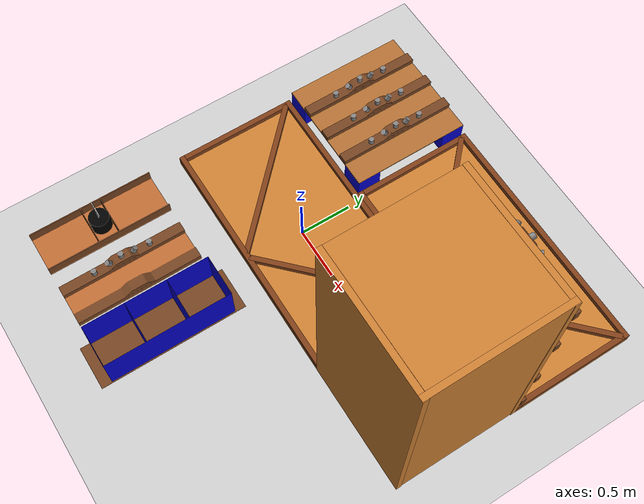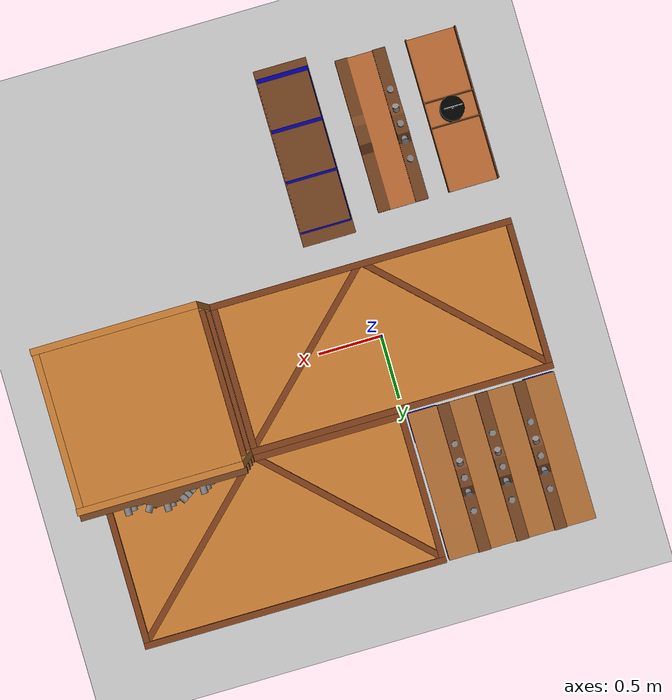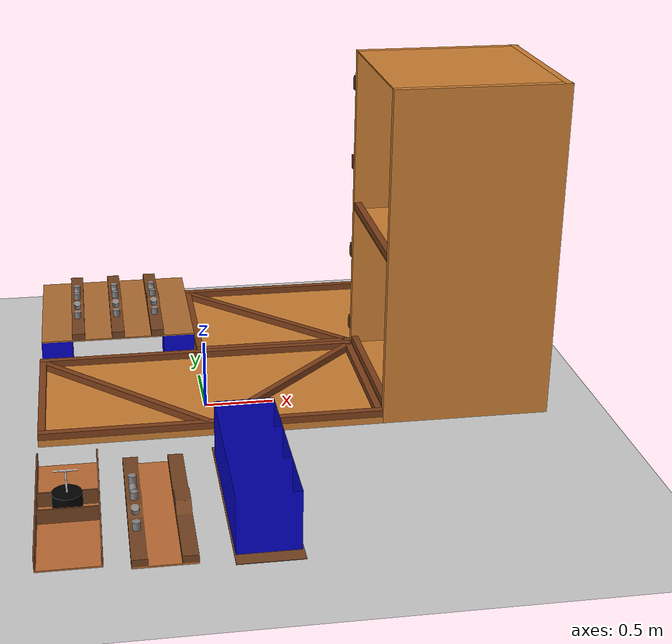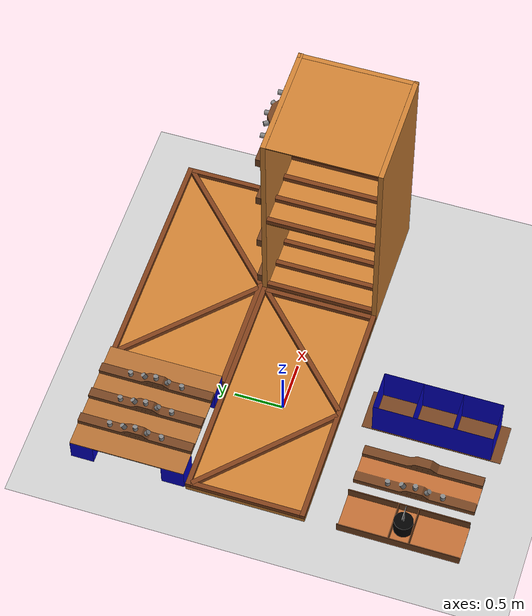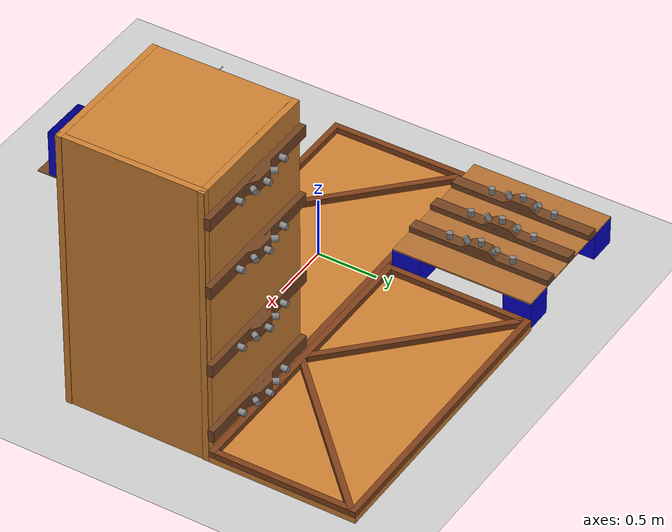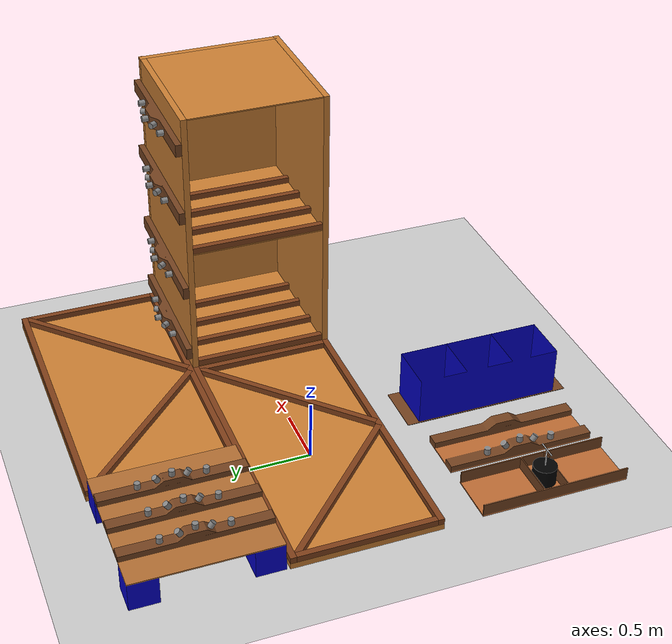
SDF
<?xml version="1.0"?>
<sdf version='1.9'>
  <world name='Dexterity'>
    <physics name='1ms' type='ignored'>
      <max_step_size>0.001</max_step_size>
      <real_time_factor>1</real_time_factor>
      <real_time_update_rate>1000</real_time_update_rate>
    </physics>
    <plugin name='gz::sim::systems::Physics' filename='ignition-gazebo-physics-system' />
    <plugin name='gz::sim::systems::UserCommands' filename='ignition-gazebo-user-commands-system' />
    <plugin name='gz::sim::systems::SceneBroadcaster'
      filename='ignition-gazebo-scene-broadcaster-system' />
    <plugin name='gz::sim::systems::Contact' filename='ignition-gazebo-contact-system' />
    <gravity>0 0 -9.8</gravity>
    <magnetic_field>6e-06 2.3e-05 -4.2e-05</magnetic_field>
    <atmosphere type='adiabatic' />
    <scene>
      <ambient>0.4 0.4 0.4 1</ambient>
      <background>0.7 0.7 0.7 1</background>
      <shadows>false</shadows>
    </scene>

    <model name='ground_plane'>
      <static>true</static>
      <link name='link'>
        <collision name='collision'>
          <geometry>
            <plane>
              <normal>0 0 1</normal>
              <size>100 100</size>
            </plane>
          </geometry>
          <surface>
            <friction>
              <ode />
            </friction>
            <bounce />
            <contact />
          </surface>
        </collision>
        <visual name='visual'>
          <geometry>
            <plane>
              <normal>0 0 1</normal>
              <size>100 100</size>
            </plane>
          </geometry>
          <material>
            <ambient>0.8 0.8 0.8 1</ambient>
            <diffuse>0.8 0.8 0.8 1</diffuse>
            <specular>0.8 0.8 0.8 1</specular>
          </material>
        </visual>
        <pose>0 0 0 0 -0 0</pose>
        <inertial>
          <pose>0 0 0 0 -0 0</pose>
          <mass>1</mass>
          <inertia>
            <ixx>1</ixx>
            <ixy>0</ixy>
            <ixz>0</ixz>
            <iyy>1</iyy>
            <iyz>0</iyz>
            <izz>1</izz>
          </inertia>
        </inertial>
        <enable_wind>false</enable_wind>
      </link>
      <pose>0 0 0 0 -0 0</pose>
      <self_collide>false</self_collide>
    </model>

    <model name='Booth'>
      <pose relative_to='Rails'>2.37 0 1.2744 1.57 0 -1.57</pose>

      <link name='Par1'>
        <inertial>
          <inertia>
            <ixx>0.16666</ixx>
            <ixy>0</ixy>
            <ixz>0</ixz>
            <iyy>0.16666</iyy>
            <iyz>0</iyz>
            <izz>0.16666</izz>
          </inertia>
          <mass>1</mass>
          <pose>0 0 0 0 -0 0</pose>
        </inertial>
        <collision name='Par1_collision'>
          <geometry>
            <box>
              <size>1.2 2.4 0.05</size>
            </box>
          </geometry>
          <surface>
            <friction>
              <ode />
            </friction>
            <bounce />
            <contact />
          </surface>
        </collision>
        <visual name='Par1_visual'>
          <geometry>
            <box>
              <size>1.2 2.4 0.05</size>
            </box>
          </geometry>
          <material>
            <ambient>0.8 0.5 0.2 1</ambient>
            <diffuse>0.8 0.5 0.2 1</diffuse>
            <specular>0.4 0.2 0.1 1</specular>
          </material>
        </visual>
        <pose>0 0 0 0 -0 0</pose>
        <enable_wind>false</enable_wind>
      </link>

      <link name='Par2'>
        <pose relative_to='Par1'>0.575 0 0.57 0 1.57 0</pose>
        <inertial>
          <inertia>
            <ixx>0.16666</ixx>
            <ixy>0</ixy>
            <ixz>0</ixz>
            <iyy>0.16666</iyy>
            <iyz>0</iyz>
            <izz>0.16666</izz>
          </inertia>
          <mass>1</mass>
          <pose>0 0 0 0 -0 0</pose>
        </inertial>
        <collision name='Par2_collision'>
          <geometry>
            <box>
              <size>1.2 2.4 0.05</size>
            </box>
          </geometry>
          <surface>
            <friction>
              <ode />
            </friction>
            <bounce />
            <contact />
          </surface>
        </collision>
        <visual name='Par2_visual'>
          <geometry>
            <box>
              <size>1.2 2.4 0.05</size>
            </box>
          </geometry>
          <material>
            <ambient>0.8 0.5 0.2 1</ambient>
            <diffuse>0.8 0.5 0.2 1</diffuse>
            <specular>0.4 0.2 0.1 1</specular>
          </material>
        </visual>
        <pose>0 0 0 0 -0 0</pose>
        <enable_wind>false</enable_wind>
      </link>

      <link name='Par3'>
        <pose relative_to="Par1">-0.575 0 0.57 0 1.57 0</pose>
        <inertial>
          <inertia>
            <ixx>0.16666</ixx>
            <ixy>0</ixy>
            <ixz>0</ixz>
            <iyy>0.16666</iyy>
            <iyz>0</iyz>
            <izz>0.16666</izz>
          </inertia>
          <mass>1</mass>
          <pose>0 0 0 0 -0 0</pose>
        </inertial>
        <collision name='Par3_collision'>
          <geometry>
            <box>
              <size>1.2 2.4 0.05</size>
            </box>
          </geometry>
          <surface>
            <friction>
              <ode />
            </friction>
            <bounce />
            <contact />
          </surface>
        </collision>
        <visual name='Par3_visual'>
          <geometry>
            <box>
              <size>1.2 2.4 0.05</size>
            </box>
          </geometry>
          <material>
            <ambient>0.8 0.5 0.2 1</ambient>
            <diffuse>0.8 0.5 0.2 1</diffuse>
            <specular>0.4 0.2 0.1 1</specular>
          </material>
        </visual>
        <pose>0 0 0 0 -0 0</pose>
        <enable_wind>false</enable_wind>
      </link>

      <link name='Blo1'>
        <pose relative_to='Par1'>0 1.195 0.595 0 0 0</pose>
        <inertial>
          <inertia>
            <ixx>0.16666</ixx>
            <ixy>0</ixy>
            <ixz>0</ixz>
            <iyy>0.16666</iyy>
            <iyz>0</iyz>
            <izz>0.16666</izz>
          </inertia>
          <mass>1</mass>
          <pose>0 0 0 0 -0 0</pose>
        </inertial>
        <collision name='Blo1_collision'>
          <geometry>
            <box>
              <size>1.1 0.01 1.13</size>
            </box>
          </geometry>
          <surface>
            <friction>
              <ode />
            </friction>
            <bounce />
            <contact />
          </surface>
        </collision>
        <visual name='Blo1_visual'>
          <geometry>
            <box>
              <size>1.1 0.01 1.145</size>
            </box>
          </geometry>
          <material>
            <ambient>0.8 0.5 0.2 1</ambient>
            <diffuse>0.8 0.5 0.2 1</diffuse>
            <specular>0.4 0.2 0.1 1</specular>
          </material>
        </visual>
        <pose>0 0 0 0 -0 0</pose>
        <enable_wind>false</enable_wind>
      </link>

      <link name='Blo2'>
        <pose relative_to='Par1'>0 0 0.595 0 0 0</pose>
        <inertial>
          <inertia>
            <ixx>0.16666</ixx>
            <ixy>0</ixy>
            <ixz>0</ixz>
            <iyy>0.16666</iyy>
            <iyz>0</iyz>
            <izz>0.16666</izz>
          </inertia>
          <mass>1</mass>
          <pose>0 0 0 0 -0 0</pose>
        </inertial>
        <collision name='Blo2_collision'>
          <geometry>
            <box>
              <size>1.1 0.01 1.145</size>
            </box>
          </geometry>
          <surface>
            <friction>
              <ode />
            </friction>
            <bounce />
            <contact />
          </surface>
        </collision>
        <visual name='Blo2_visual'>
          <geometry>
            <box>
              <size>1.1 0.01 1.145</size>
            </box>
          </geometry>
          <material>
            <ambient>0.8 0.5 0.2 1</ambient>
            <diffuse>0.8 0.5 0.2 1</diffuse>
            <specular>0.4 0.2 0.1 1</specular>
          </material>
        </visual>
        <pose>0 0 0 0 -0 0</pose>
        <enable_wind>false</enable_wind>
      </link>

      <link name='Blo3'>
        <pose relative_to='Par1'>0 -1.1 0.595 0 0 0</pose>
        <inertial>
          <inertia>
            <ixx>0.16666</ixx>
            <ixy>0</ixy>
            <ixz>0</ixz>
            <iyy>0.16666</iyy>
            <iyz>0</iyz>
            <izz>0.16666</izz>
          </inertia>
          <mass>1</mass>
          <pose>0 0 0 0 -0 0</pose>
        </inertial>
        <collision name='Blo3_collision'>
          <geometry>
            <box>
              <size>1.1 0.01 1.145</size>
            </box>
          </geometry>
          <surface>
            <friction>
              <ode />
            </friction>
            <bounce />
            <contact />
          </surface>
        </collision>
        <visual name='Blo3_visual'>
          <geometry>
            <box>
              <size>1.1 0.01 1.145</size>
            </box>
          </geometry>
          <material>
            <ambient>0.8 0.5 0.2 1</ambient>
            <diffuse>0.8 0.5 0.2 1</diffuse>
            <specular>0.4 0.2 0.1 1</specular>
          </material>
        </visual>
        <enable_wind>false</enable_wind>
      </link>

      <!-- Bloco 1 -->
      <link name='Fei1'>
        <inertial>
          <inertia>
            <ixx>0.16666</ixx>
            <ixy>0</ixy>
            <ixz>0</ixz>
            <iyy>0.16666</iyy>
            <iyz>0</iyz>
            <izz>0.16666</izz>
          </inertia>
          <mass>1</mass>
          <pose>0 0 0 0 -0 0</pose>
        </inertial>
        <collision name='Fei1_collision'>
          <geometry>
            <box>
              <size>1.1 0.05 0.05</size>
            </box>
          </geometry>
          <surface>
            <friction>
              <ode />
            </friction>
            <bounce />
            <contact />
          </surface>
        </collision>
        <visual name='Fei1_visual'>
          <geometry>
            <box>
              <size>1.1 0.05 0.05</size>
            </box>
          </geometry>
          <material>
            <ambient>0.5 0.25 0.1 1</ambient>
            <diffuse>0.5 0.25 0.1 1</diffuse>
            <specular>0.3 0.15 0.05 1</specular>
          </material>
        </visual>
        <pose relative_to='Blo2'>0 0.03 0.547 0 0 0</pose>
        <enable_wind>false</enable_wind>
      </link>

      <link name='Fei2'>
        <inertial>
          <inertia>
            <ixx>0.16666</ixx>
            <ixy>0</ixy>
            <ixz>0</ixz>
            <iyy>0.16666</iyy>
            <iyz>0</iyz>
            <izz>0.16666</izz>
          </inertia>
          <mass>1</mass>
          <pose>0 0 0 0 -0 0</pose>
        </inertial>
        <collision name='Fei2_collision'>
          <geometry>
            <box>
              <size>1.1 0.05 0.05</size>
            </box>
          </geometry>
          <surface>
            <friction>
              <ode />
            </friction>
            <bounce />
            <contact />
          </surface>
        </collision>
        <visual name='Fei2_visual'>
          <geometry>
            <box>
              <size>1.1 0.05 0.05</size>
            </box>
          </geometry>
          <material>
            <ambient>0.5 0.25 0.1 1</ambient>
            <diffuse>0.5 0.25 0.1 1</diffuse>
            <specular>0.3 0.15 0.05 1</specular>
          </material>
        </visual>
        <pose relative_to='Blo2'>0 0.03 0.272 0 0 0</pose>
        <enable_wind>false</enable_wind>
      </link>

      <link name='Fei3'>
        <inertial>
          <inertia>
            <ixx>0.16666</ixx>
            <ixy>0</ixy>
            <ixz>0</ixz>
            <iyy>0.16666</iyy>
            <iyz>0</iyz>
            <izz>0.16666</izz>
          </inertia>
          <mass>1</mass>
          <pose>0 0 0 0 -0 0</pose>
        </inertial>
        <collision name='Fei3_collision'>
          <geometry>
            <box>
              <size>1.1 0.05 0.05</size>
            </box>
          </geometry>
          <surface>
            <friction>
              <ode />
            </friction>
            <bounce />
            <contact />
          </surface>
        </collision>
        <visual name='Fei3_visual'>
          <geometry>
            <box>
              <size>1.1 0.05 0.05</size>
            </box>
          </geometry>
          <material>
            <ambient>0.5 0.25 0.1 1</ambient>
            <diffuse>0.5 0.25 0.1 1</diffuse>
            <specular>0.3 0.15 0.05 1</specular>
          </material>
        </visual>
        <pose relative_to='Blo2'>0 0.03 -0.272 0 0 0</pose>
        <enable_wind>false</enable_wind>
      </link>

      <link name='Fei4'>
        <inertial>
          <inertia>
            <ixx>0.16666</ixx>
            <ixy>0</ixy>
            <ixz>0</ixz>
            <iyy>0.16666</iyy>
            <iyz>0</iyz>
            <izz>0.16666</izz>
          </inertia>
          <mass>1</mass>
          <pose>0 0 0 0 -0 0</pose>
        </inertial>
        <collision name='Fei4_collision'>
          <geometry>
            <box>
              <size>1.1 0.05 0.05</size>
            </box>
          </geometry>
          <surface>
            <friction>
              <ode />
            </friction>
            <bounce />
            <contact />
          </surface>
        </collision>
        <visual name='Fei4_visual'>
          <geometry>
            <box>
              <size>1.1 0.05 0.05</size>
            </box>
          </geometry>
          <material>
            <ambient>0.5 0.25 0.1 1</ambient>
            <diffuse>0.5 0.25 0.1 1</diffuse>
            <specular>0.3 0.15 0.05 1</specular>
          </material>
        </visual>
        <pose relative_to='Blo2'>0 0.03 0 0 0 0</pose>
        <enable_wind>false</enable_wind>
      </link>

      <!-- Bloco 2-->
      <link name='Fei5'>
        <inertial>
          <inertia>
            <ixx>0.16666</ixx>
            <ixy>0</ixy>
            <ixz>0</ixz>
            <iyy>0.16666</iyy>
            <iyz>0</iyz>
            <izz>0.16666</izz>
          </inertia>
          <mass>1</mass>
          <pose>0 0 0 0 -0 0</pose>
        </inertial>
        <collision name='Fei5_collision'>
          <geometry>
            <box>
              <size>1.1 0.05 0.05</size>
            </box>
          </geometry>
          <surface>
            <friction>
              <ode />
            </friction>
            <bounce />
            <contact />
          </surface>
        </collision>
        <visual name='Fei5_visual'>
          <geometry>
            <box>
              <size>1.1 0.05 0.05</size>
            </box>
          </geometry>
          <material>
            <ambient>0.5 0.25 0.1 1</ambient>
            <diffuse>0.5 0.25 0.1 1</diffuse>
            <specular>0.3 0.15 0.05 1</specular>
          </material>
        </visual>
        <pose relative_to='Blo3'>0 0.03 0.547 0 0 0</pose>
        <enable_wind>false</enable_wind>
      </link>

      <link name='Fei6'>
        <inertial>
          <inertia>
            <ixx>0.16666</ixx>
            <ixy>0</ixy>
            <ixz>0</ixz>
            <iyy>0.16666</iyy>
            <iyz>0</iyz>
            <izz>0.16666</izz>
          </inertia>
          <mass>1</mass>
          <pose>0 0 0 0 -0 0</pose>
        </inertial>
        <collision name='Fei6_collision'>
          <geometry>
            <box>
              <size>1.1 0.05 0.05</size>
            </box>
          </geometry>
          <surface>
            <friction>
              <ode />
            </friction>
            <bounce />
            <contact />
          </surface>
        </collision>
        <visual name='Fei6_visual'>
          <geometry>
            <box>
              <size>1.1 0.05 0.05</size>
            </box>
          </geometry>
          <material>
            <ambient>0.5 0.25 0.1 1</ambient>
            <diffuse>0.5 0.25 0.1 1</diffuse>
            <specular>0.3 0.15 0.05 1</specular>
          </material>
        </visual>
        <pose relative_to='Blo3'>0 0.03 0.272 0 0 0</pose>
        <enable_wind>false</enable_wind>
      </link>

      <link name='Fei7'>
        <inertial>
          <inertia>
            <ixx>0.16666</ixx>
            <ixy>0</ixy>
            <ixz>0</ixz>
            <iyy>0.16666</iyy>
            <iyz>0</iyz>
            <izz>0.16666</izz>
          </inertia>
          <mass>1</mass>
          <pose>0 0 0 0 -0 0</pose>
        </inertial>
        <collision name='Fei7_collision'>
          <geometry>
            <box>
              <size>1.1 0.05 0.05</size>
            </box>
          </geometry>
          <surface>
            <friction>
              <ode />
            </friction>
            <bounce />
            <contact />
          </surface>
        </collision>
        <visual name='Fei7_visual'>
          <geometry>
            <box>
              <size>1.1 0.05 0.05</size>
            </box>
          </geometry>
          <material>
            <ambient>0.5 0.25 0.1 1</ambient>
            <diffuse>0.5 0.25 0.1 1</diffuse>
            <specular>0.3 0.15 0.05 1</specular>
          </material>
        </visual>
        <pose relative_to='Blo3'>0 0.03 -0.272 0 0 0</pose>
        <enable_wind>false</enable_wind>
      </link>

      <link name='Fei8'>
        <inertial>
          <inertia>
            <ixx>0.16666</ixx>
            <ixy>0</ixy>
            <ixz>0</ixz>
            <iyy>0.16666</iyy>
            <iyz>0</iyz>
            <izz>0.16666</izz>
          </inertia>
          <mass>1</mass>
          <pose>0 0 0 0 -0 0</pose>
        </inertial>
        <collision name='Fei8_collision'>
          <geometry>
            <box>
              <size>1.1 0.05 0.05</size>
            </box>
          </geometry>
          <surface>
            <friction>
              <ode />
            </friction>
            <bounce />
            <contact />
          </surface>
        </collision>
        <visual name='Fei8_visual'>
          <geometry>
            <box>
              <size>1.1 0.05 0.05</size>
            </box>
          </geometry>
          <material>
            <ambient>0.5 0.25 0.1 1</ambient>
            <diffuse>0.5 0.25 0.1 1</diffuse>
            <specular>0.3 0.15 0.05 1</specular>
          </material>
        </visual>
        <pose relative_to='Blo3'>0 0.03 0 0 0 0</pose>
        <enable_wind>false</enable_wind>
      </link>

      <!-- Rails -->

      <link name='Rails1'>
        <collision name='Rails1_collision'>
          <geometry>
            <mesh>
              <uri>model://Rails.dae</uri>
              <scale>0.5 0.5 0.5</scale>
            </mesh>
          </geometry>
        </collision>

        <visual name='Rails1_visual'>
          <geometry>
            <mesh>
              <uri>model://Rails.dae</uri>
              <scale>0.5 0.5 0.5</scale>
            </mesh>
          </geometry>
        </visual>
        <pose relative_to='Par3'>0 0.95 -0.05 0 3.14 1.57</pose>
      </link>

      <link name='Rails2'>
        <collision name='Rails2_collision'>
          <geometry>
            <mesh>
              <uri>model://Rails.dae</uri>
              <scale>0.5 0.5 0.5</scale>
            </mesh>
          </geometry>
        </collision>

        <visual name='Rails2_visual'>
          <geometry>
            <mesh>
              <uri>model://Rails.dae</uri>
              <scale>0.5 0.5 0.5</scale>
            </mesh>
          </geometry>
        </visual>
        <pose relative_to='Par3'>0 0.35 -0.05 0 3.14 1.57</pose>
      </link>

      <link name='Rails3'>
        <collision name='Rails3_collision'>
          <geometry>
            <mesh>
              <uri>model://Rails.dae</uri>
              <scale>0.5 0.5 0.5</scale>
            </mesh>
          </geometry>
        </collision>

        <visual name='Rails3_visual'>
          <geometry>
            <mesh>
              <uri>model://Rails.dae</uri>
              <scale>0.5 0.5 0.5</scale>
            </mesh>
          </geometry>
        </visual>
        <pose relative_to='Par3'>0 -0.35 -0.05 0 3.14 1.57</pose>
      </link>

      <link name='Rails4'>
        <collision name='Rails4_collision'>
          <geometry>
            <mesh>
              <uri>model://Rails.dae</uri>
              <scale>0.5 0.5 0.5</scale>
            </mesh>
          </geometry>
        </collision>

        <visual name='Rails4_visual'>
          <geometry>
            <mesh>
              <uri>model://Rails.dae</uri>
              <scale>0.5 0.5 0.5</scale>
            </mesh>
          </geometry>
        </visual>
        <pose relative_to='Par3'>0 -0.95 -0.05 0 3.14 1.57</pose>
      </link>

      <static>true</static>
    </model>

    <model name='Rails'>
      <pose>0 0 0 0 0 0</pose>
      <link name='Bas1'>
        <inertial>
          <inertia>
            <ixx>0.16666</ixx>
            <ixy>0</ixy>
            <ixz>0</ixz>
            <iyy>0.16666</iyy>
            <iyz>0</iyz>
            <izz>0.16666</izz>
          </inertia>
          <mass>1</mass>
          <pose>0 0 0 0 -0 0</pose>
        </inertial>
        <collision name='Bas1_collision'>
          <geometry>
            <box>
              <size>2.4 1.2 0.05</size>
            </box>
          </geometry>
          <surface>
            <friction>
              <ode />
            </friction>
            <bounce />
            <contact />
          </surface>
        </collision>
        <visual name='Bas1_visual'>
          <geometry>
            <box>
              <size>2.4 1.2 0.05</size>
            </box>
          </geometry>
          <material>
            <ambient>0.8 0.5 0.2 1</ambient>
            <diffuse>0.8 0.5 0.2 1</diffuse>
            <specular>0.4 0.2 0.1 1</specular>
          </material>
        </visual>
        <pose>0 0 0.1 0 -0 0</pose>
        <enable_wind>false</enable_wind>
      </link>
      <link name='Bas2'>
        <inertial>
          <inertia>
            <ixx>0.16666</ixx>
            <ixy>0</ixy>
            <ixz>0</ixz>
            <iyy>0.16666</iyy>
            <iyz>0</iyz>
            <izz>0.16666</izz>
          </inertia>
          <mass>1</mass>
          <pose>0 0 0 0 -0 0</pose>
        </inertial>
        <collision name='Bas2_collision'>
          <geometry>
            <box>
              <size>2.4 1.2 0.05</size>
            </box>
          </geometry>
          <surface>
            <friction>
              <ode />
            </friction>
            <bounce />
            <contact />
          </surface>
        </collision>
        <visual name='Bas2_visual'>
          <geometry>
            <box>
              <size>2.4 1.2 0.05</size>
            </box>
          </geometry>
          <material>
            <ambient>0.8 0.5 0.2 1</ambient>
            <diffuse>0.8 0.5 0.2 1</diffuse>
            <specular>0.4 0.2 0.1 1</specular>
          </material>
        </visual>
        <pose relative_to='Bas1'>1.2 1.2 0 0 0 0</pose>
        <enable_wind>false</enable_wind>
      </link>

      <!-- Base 2 -->

      <link name='BarA1'>
        <inertial>
          <inertia>
            <ixx>0.16666</ixx>
            <ixy>0</ixy>
            <ixz>0</ixz>
            <iyy>0.16666</iyy>
            <iyz>0</iyz>
            <izz>0.16666</izz>
          </inertia>
          <mass>1</mass>
          <pose>0 0 0 0 -0 0</pose>
        </inertial>
        <collision name='BarA1_collision'>
          <geometry>
            <box>
              <size>2.4 0.05 0.05</size>
            </box>
          </geometry>
          <surface>
            <friction>
              <ode />
            </friction>
            <bounce />
            <contact />
          </surface>
        </collision>
        <visual name='BarA1_visual'>
          <geometry>
            <box>
              <size>2.4 0.05 0.05</size>
            </box>
          </geometry>
          <material>
            <ambient>0.5 0.25 0.1 1</ambient>
            <diffuse>0.5 0.25 0.1 1</diffuse>
            <specular>0.3 0.15 0.05 1</specular>
          </material>
        </visual>
        <pose relative_to='Bas1'>0 -0.575 0.05 0 0 0</pose>
        <enable_wind>false</enable_wind>
      </link>
      <link name='BarA2'>
        <inertial>
          <inertia>
            <ixx>0.16666</ixx>
            <ixy>0</ixy>
            <ixz>0</ixz>
            <iyy>0.16666</iyy>
            <iyz>0</iyz>
            <izz>0.16666</izz>
          </inertia>
          <mass>1</mass>
          <pose>0 0 0 0 -0 0</pose>
        </inertial>
        <collision name='BarA2_collision'>
          <geometry>
            <box>
              <size>2.4 0.05 0.05</size>
            </box>
          </geometry>
          <surface>
            <friction>
              <ode />
            </friction>
            <bounce />
            <contact />
          </surface>
        </collision>
        <visual name='BarA2_visual'>
          <geometry>
            <box>
              <size>2.4 0.05 0.05</size>
            </box>
          </geometry>
          <material>
            <ambient>0.5 0.25 0.1 1</ambient>
            <diffuse>0.5 0.25 0.1 1</diffuse>
            <specular>0.3 0.15 0.05 1</specular>
          </material>
        </visual>
        <pose relative_to='Bas1'>0 0.575 0.05 0 -0 0</pose>
        <enable_wind>false</enable_wind>
      </link>
      <link name='BarA3'>
        <inertial>
          <inertia>
            <ixx>0.16666</ixx>
            <ixy>0</ixy>
            <ixz>0</ixz>
            <iyy>0.16666</iyy>
            <iyz>0</iyz>
            <izz>0.16666</izz>
          </inertia>
          <mass>1</mass>
          <pose>0 0 0 0 -0 0</pose>
        </inertial>
        <collision name='BarA3_collision'>
          <geometry>
            <box>
              <size>0.05 1.1 0.05</size>
            </box>
          </geometry>
          <surface>
            <friction>
              <ode />
            </friction>
            <bounce />
            <contact />
          </surface>
        </collision>
        <visual name='BarA3_visual'>
          <geometry>
            <box>
              <size>0.05 1.1 0.05</size>
            </box>
          </geometry>
          <material>
            <ambient>0.5 0.25 0.1 1</ambient>
            <diffuse>0.5 0.25 0.1 1</diffuse>
            <specular>0.3 0.15 0.05 1</specular>
          </material>
        </visual>
        <pose relative_to='Bas1'>-1.175 0 0.05 0 -0 0</pose>
        <enable_wind>false</enable_wind>
      </link>
      <link name='BarA4'>
        <inertial>
          <inertia>
            <ixx>0.16666</ixx>
            <ixy>0</ixy>
            <ixz>0</ixz>
            <iyy>0.16666</iyy>
            <iyz>0</iyz>
            <izz>0.16666</izz>
          </inertia>
          <mass>1</mass>
          <pose>0 0 0 0 -0 0</pose>
        </inertial>
        <collision name='BarA4_collision'>
          <geometry>
            <box>
              <size>0.05 1.1 0.05</size>
            </box>
          </geometry>
          <surface>
            <friction>
              <ode />
            </friction>
            <bounce />
            <contact />
          </surface>
        </collision>
        <visual name='BarA4_visual'>
          <geometry>
            <box>
              <size>0.05 1.1 0.05</size>
            </box>
          </geometry>
          <material>
            <ambient>0.5 0.25 0.1 1</ambient>
            <diffuse>0.5 0.25 0.1 1</diffuse>
            <specular>0.3 0.15 0.05 1</specular>
          </material>
        </visual>
        <pose relative_to='Bas1'>1.175 0 0.05 0 -0 0</pose>
        <enable_wind>false</enable_wind>
      </link>
      <link name='BarA5'>
        <inertial>
          <inertia>
            <ixx>0.16666</ixx>
            <ixy>0</ixy>
            <ixz>0</ixz>
            <iyy>0.16666</iyy>
            <iyz>0</iyz>
            <izz>0.16666</izz>
          </inertia>
          <mass>1</mass>
          <pose>0 0 0 0 -0 0</pose>
        </inertial>
        <collision name='BarA5_collision'>
          <geometry>
            <box>
              <size>0.05 1.6 0.05</size>
            </box>
          </geometry>
          <surface>
            <friction>
              <ode />
            </friction>
            <bounce />
            <contact />
          </surface>
        </collision>
        <visual name='BarA5_visual'>
          <geometry>
            <box>
              <size>0.05 1.6 0.05</size>
            </box>
          </geometry>
          <material>
            <ambient>0.5 0.25 0.1 1</ambient>
            <diffuse>0.5 0.25 0.1 1</diffuse>
            <specular>0.3 0.15 0.05 1</specular>
          </material>
        </visual>
        <pose relative_to='Bas1'>-0.6 -0.01 0.05 0 -0 0.8</pose>
        <enable_wind>false</enable_wind>
      </link>
      <link name='BarA6'>
        <inertial>
          <inertia>
            <ixx>0.16666</ixx>
            <ixy>0</ixy>
            <ixz>0</ixz>
            <iyy>0.16666</iyy>
            <iyz>0</iyz>
            <izz>0.16666</izz>
          </inertia>
          <mass>1</mass>
          <pose>0 0 0 0 -0 0</pose>
        </inertial>
        <collision name='BarA6_collision'>
          <geometry>
            <box>
              <size>0.05 1.6 0.05</size>
            </box>
          </geometry>
          <surface>
            <friction>
              <ode />
            </friction>
            <bounce />
            <contact />
          </surface>
        </collision>
        <visual name='BarA6_visual'>
          <geometry>
            <box>
              <size>0.05 1.6 0.05</size>
            </box>
          </geometry>
          <material>
            <ambient>0.5 0.25 0.1 1</ambient>
            <diffuse>0.5 0.25 0.1 1</diffuse>
            <specular>0.3 0.15 0.05 1</specular>
          </material>
        </visual>
        <pose relative_to='Bas1'>0.6 -0.01 0.05 0 0 -0.8</pose>
        <enable_wind>false</enable_wind>
      </link>

      <!-- Base 2 -->

      <link name='BarA7'>
        <inertial>
          <inertia>
            <ixx>0.16666</ixx>
            <ixy>0</ixy>
            <ixz>0</ixz>
            <iyy>0.16666</iyy>
            <iyz>0</iyz>
            <izz>0.16666</izz>
          </inertia>
          <mass>1</mass>
          <pose>0 0 0 0 -0 0</pose>
        </inertial>
        <collision name='BarA7_collision'>
          <geometry>
            <box>
              <size>2.4 0.05 0.05</size>
            </box>
          </geometry>
          <surface>
            <friction>
              <ode />
            </friction>
            <bounce />
            <contact />
          </surface>
        </collision>
        <visual name='BarA7_visual'>
          <geometry>
            <box>
              <size>2.4 0.05 0.05</size>
            </box>
          </geometry>
          <material>
            <ambient>0.5 0.25 0.1 1</ambient>
            <diffuse>0.5 0.25 0.1 1</diffuse>
            <specular>0.3 0.15 0.05 1</specular>
          </material>
        </visual>
        <pose relative_to='Bas2'>0 -0.575 0.05 0 0 0</pose>
        <enable_wind>false</enable_wind>
      </link>
      <link name='BarA8'>
        <inertial>
          <inertia>
            <ixx>0.16666</ixx>
            <ixy>0</ixy>
            <ixz>0</ixz>
            <iyy>0.16666</iyy>
            <iyz>0</iyz>
            <izz>0.16666</izz>
          </inertia>
          <mass>1</mass>
          <pose>0 0 0 0 -0 0</pose>
        </inertial>
        <collision name='BarA8_collision'>
          <geometry>
            <box>
              <size>2.4 0.05 0.05</size>
            </box>
          </geometry>
          <surface>
            <friction>
              <ode />
            </friction>
            <bounce />
            <contact />
          </surface>
        </collision>
        <visual name='BarA8_visual'>
          <geometry>
            <box>
              <size>2.4 0.05 0.05</size>
            </box>
          </geometry>
          <material>
            <ambient>0.5 0.25 0.1 1</ambient>
            <diffuse>0.5 0.25 0.1 1</diffuse>
            <specular>0.3 0.15 0.05 1</specular>
          </material>
        </visual>
        <pose relative_to='Bas2'>0 0.575 0.05 0 0 0</pose>
        <enable_wind>false</enable_wind>
      </link>
      <link name='BarA9'>
        <inertial>
          <inertia>
            <ixx>0.16666</ixx>
            <ixy>0</ixy>
            <ixz>0</ixz>
            <iyy>0.16666</iyy>
            <iyz>0</iyz>
            <izz>0.16666</izz>
          </inertia>
          <mass>1</mass>
          <pose>0 0 0 0 -0 0</pose>
        </inertial>
        <collision name='BarA9_collision'>
          <geometry>
            <box>
              <size>0.05 1.1 0.05</size>
            </box>
          </geometry>
          <surface>
            <friction>
              <ode />
            </friction>
            <bounce />
            <contact />
          </surface>
        </collision>
        <visual name='BarA9_visual'>
          <geometry>
            <box>
              <size>0.05 1.1 0.05</size>
            </box>
          </geometry>
          <material>
            <ambient>0.5 0.25 0.1 1</ambient>
            <diffuse>0.5 0.25 0.1 1</diffuse>
            <specular>0.3 0.15 0.05 1</specular>
          </material>
        </visual>
        <pose relative_to='Bas2'>1.175 0 0.05 0 0 0</pose>
        <enable_wind>false</enable_wind>
      </link>
      <link name='BarA10'>
        <inertial>
          <inertia>
            <ixx>0.16666</ixx>
            <ixy>0</ixy>
            <ixz>0</ixz>
            <iyy>0.16666</iyy>
            <iyz>0</iyz>
            <izz>0.16666</izz>
          </inertia>
          <mass>1</mass>
          <pose>0 0 0 0 -0 0</pose>
        </inertial>
        <collision name='BarA10_collision'>
          <geometry>
            <box>
              <size>0.05 1.1 0.05</size>
            </box>
          </geometry>
          <surface>
            <friction>
              <ode />
            </friction>
            <bounce />
            <contact />
          </surface>
        </collision>
        <visual name='BarA10_visual'>
          <geometry>
            <box>
              <size>0.05 1.1 0.05</size>
            </box>
          </geometry>
          <material>
            <ambient>0.5 0.25 0.1 1</ambient>
            <diffuse>0.5 0.25 0.1 1</diffuse>
            <specular>0.3 0.15 0.05 1</specular>
          </material>
        </visual>
        <pose relative_to='Bas2'>-1.175 0 0.05 0 -0 0</pose>
        <enable_wind>false</enable_wind>
      </link>
      <link name='BarA11'>
        <inertial>
          <inertia>
            <ixx>0.16666</ixx>
            <ixy>0</ixy>
            <ixz>0</ixz>
            <iyy>0.16666</iyy>
            <iyz>0</iyz>
            <izz>0.16666</izz>
          </inertia>
          <mass>1</mass>
          <pose>0 0 0 0 -0 0</pose>
        </inertial>
        <collision name='BarA11_collision'>
          <geometry>
            <box>
              <size>0.05 1.6 0.05</size>
            </box>
          </geometry>
          <surface>
            <friction>
              <ode />
            </friction>
            <bounce />
            <contact />
          </surface>
        </collision>
        <visual name='BarA11_visual'>
          <geometry>
            <box>
              <size>0.05 1.6 0.05</size>
            </box>
          </geometry>
          <material>
            <ambient>0.5 0.25 0.1 1</ambient>
            <diffuse>0.5 0.25 0.1 1</diffuse>
            <specular>0.3 0.15 0.05 1</specular>
          </material>
        </visual>
        <pose relative_to='Bas2'>-0.6 -0.01 0.05 0 -0 0.8</pose>
        <enable_wind>false</enable_wind>
      </link>
      <link name='BarA12'>
        <inertial>
          <inertia>
            <ixx>0.16666</ixx>
            <ixy>0</ixy>
            <ixz>0</ixz>
            <iyy>0.16666</iyy>
            <iyz>0</iyz>
            <izz>0.16666</izz>
          </inertia>
          <mass>1</mass>
          <pose>0 0 0 0 -0 0</pose>
        </inertial>
        <collision name='BarA12_collision'>
          <geometry>
            <box>
              <size>0.05 1.6 0.05</size>
            </box>
          </geometry>
          <surface>
            <friction>
              <ode />
            </friction>
            <bounce />
            <contact />
          </surface>
        </collision>
        <visual name='BarA12_visual'>
          <geometry>
            <box>
              <size>0.05 1.6 0.05</size>
            </box>
          </geometry>
          <material>
            <ambient>0.5 0.25 0.1 1</ambient>
            <diffuse>0.5 0.25 0.1 1</diffuse>
            <specular>0.3 0.15 0.05 1</specular>
          </material>
        </visual>
        <pose relative_to='Bas2'>0.6 -0.01 0.05 0 0 -0.8</pose>
        <enable_wind>false</enable_wind>
      </link>

      <!-- Box -->
      <link name='Box'>
        <collision name='Box_collision'>
          <geometry>
            <mesh>
              <uri>model://Box.dae</uri>
              <scale>0.58 0.58 0.58</scale>
            </mesh>
          </geometry>
        </collision>

        <visual name='Box_visual'>
          <geometry>
            <mesh>
              <uri>model://Box.dae</uri>
              <scale>0.58 0.58 0.58</scale>
            </mesh>
          </geometry>
        </visual>
        <pose relative_to='Bas2'>-1.8 0 -2.7 0 0 0</pose>
      </link>

      <link name='Rails5'>
        <collision name='Rails5_collision'>
          <geometry>
            <mesh>
              <uri>model://Rails.dae</uri>
              <scale>0.48 0.48 0.48</scale>
            </mesh>
          </geometry>
        </collision>

        <visual name='Rails5_visual'>
          <geometry>
            <mesh>
              <uri>model://Rails.dae</uri>
              <scale>0.48 0.48 0.48</scale>
            </mesh>
          </geometry>
        </visual>
        <pose relative_to='Box'>0.3 0 2.93 0 0 0</pose>
      </link>

      <link name='Rails6'>
        <collision name='Rails6_collision'>
          <geometry>
            <mesh>
              <uri>model://Rails.dae</uri>
              <scale>0.48 0.48 0.48</scale>
            </mesh>
          </geometry>
        </collision>

        <visual name='Rails6_visual'>
          <geometry>
            <mesh>
              <uri>model://Rails.dae</uri>
              <scale>0.48 0.48 0.48</scale>
            </mesh>
          </geometry>
        </visual>
        <pose relative_to='Box'>0 0 2.93 0 0 0</pose>
      </link>

      <link name='Rails7'>
        <collision name='Rails7_collision'>
          <geometry>
            <mesh>
              <uri>model://Rails.dae</uri>
              <scale>0.48 0.48 0.48</scale>
            </mesh>
          </geometry>
        </collision>

        <visual name='Rails7_visual'>
          <geometry>
            <mesh>
              <uri>model://Rails.dae</uri>
              <scale>0.48 0.48 0.48</scale>
            </mesh>
          </geometry>
        </visual>
        <pose relative_to='Box'>-0.3 0 2.93 0 0 0</pose>
      </link>

      <static>true</static>
      <self_collide>false</self_collide>
    </model>

    <model name='Box2'>
      <pose>0.175 -1.52 0.1 0 0 1.57</pose>
      <static>true</static>
      <link name='Box2_link'>
        <collision name='Box2_collision'>
          <geometry>
            <mesh>
              <uri>model://Box2.dae</uri>
              <scale>0.2 0.2 0.2</scale>
            </mesh>
          </geometry>
        </collision>

        <visual name='Box2_visual'>
          <geometry>
            <mesh>
              <uri>model://Box2.dae</uri>
              <scale>0.2 0.2 0.2</scale>
            </mesh>
          </geometry>
        </visual>
      </link>
    </model>

    <model name='Box3'>
      <pose>-1 -1.52 0.1 0 0 0</pose>
      <static>true</static>
      <link name='Box3_link'>
        <collision name='Box3_collision'>
          <geometry>
            <mesh>
              <uri>model://Box3.dae</uri>
              <scale>0.5 0.5 0.5</scale>
            </mesh>
          </geometry>
        </collision>

        <visual name='Box3_visual'>
          <geometry>
            <mesh>
              <uri>model://Box3.dae</uri>
              <scale>0.5 0.5 0.5</scale>
            </mesh>
          </geometry>
        </visual>
      </link>
    </model>

    <model name='RailsW'>
      <pose>-0.44 -1.52 0.1 0 0 0</pose>
      <static>true</static>
      <link name='RailsW_link'>
        <collision name='RailsW_collision'>
          <geometry>
            <mesh>
              <uri>model://RailsW.dae</uri>
              <scale>0.5 0.5 0.5</scale>
            </mesh>
          </geometry>
        </collision>

        <visual name='RailsW_visual'>
          <geometry>
            <mesh>
              <uri>model://RailsW.dae</uri>
              <scale>0.5 0.5 0.5</scale>
            </mesh>
          </geometry>
        </visual>
      </link>
    </model>

    <light name='sun' type='directional'>
      <pose>0 0 -10 0 -0 0</pose>
      <cast_shadows>false</cast_shadows>
      <intensity>1</intensity>
      <direction>0.5 0.1 -0.9</direction>
      <diffuse>0.8 0.8 0.8 1</diffuse>
      <specular>0.2 0.2 0.2 1</specular>
      <attenuation>
        <range>1000</range>
        <linear>0.01</linear>
        <constant>0.90000000000000002</constant>
        <quadratic>0.001</quadratic>
      </attenuation>
      <spot>
        <inner_angle>0</inner_angle>
        <outer_angle>0</outer_angle>
        <falloff>0</falloff>
      </spot>
    </light>
  </world>
</sdf>
